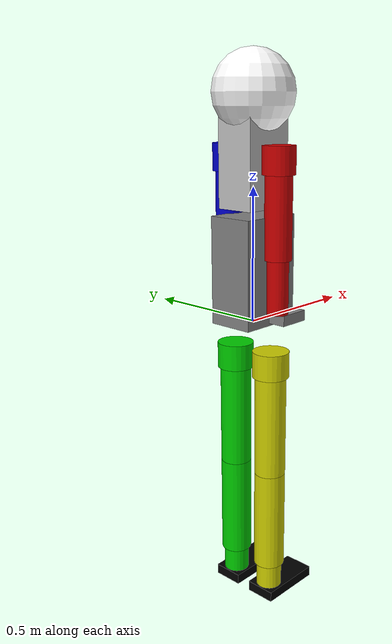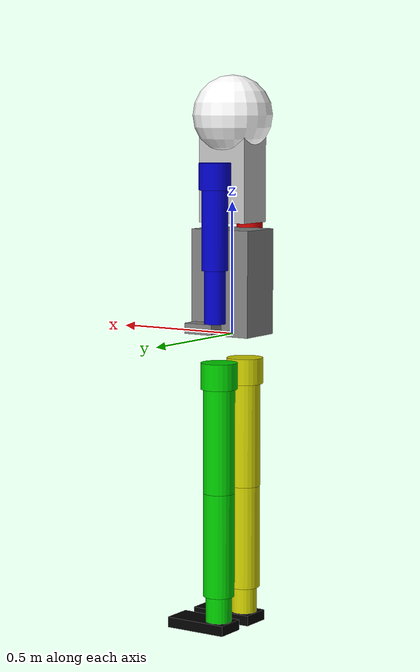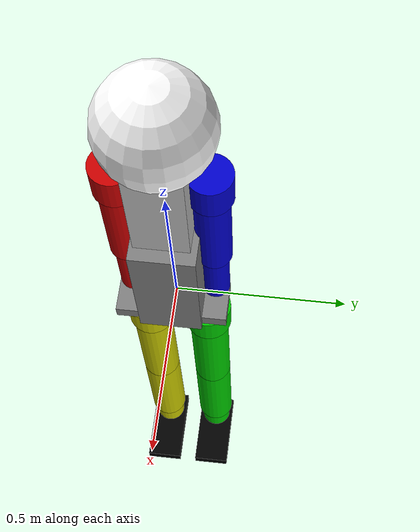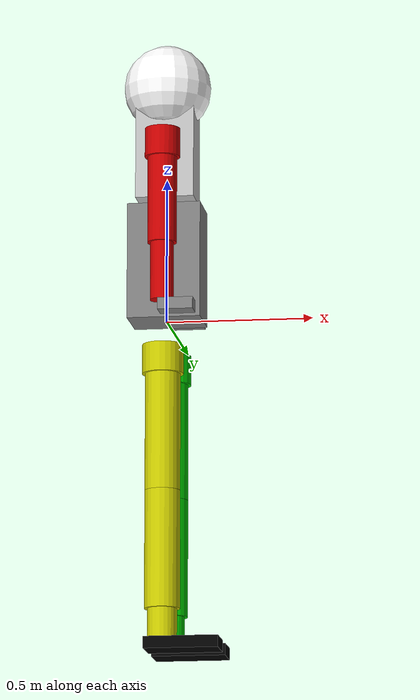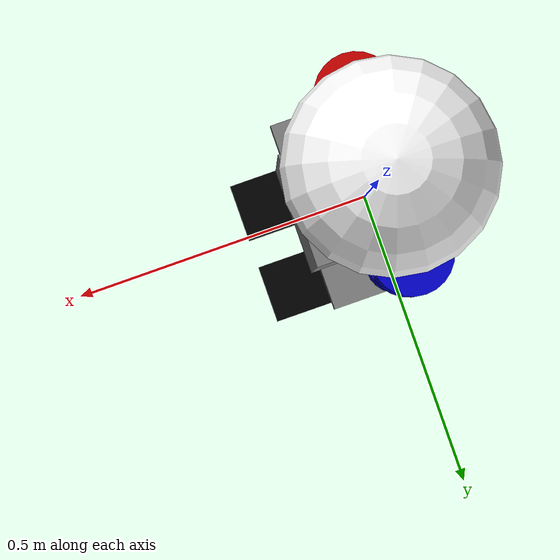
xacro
---
sidebar_position: 5
---

# Module 3 Project: Complete Humanoid Digital Twin with Isaac Sim, ROS, and RL

## Project Overview

Welcome to the Module 3 Capstone Project! In this comprehensive project, you'll integrate all the concepts from this module to create a complete digital twin system for a humanoid robot. This project combines Isaac Sim physics simulation, Isaac ROS communication, vSLAM navigation capabilities, and reinforcement learning for dynamic behaviors.

### Project Goals

1. **Build a complete humanoid robot model** with accurate physics properties
2. **Implement vSLAM system** for navigation in indoor environments
3. **Train locomotion skills** using reinforcement learning
4. **Integrate with ROS2 ecosystem** for real-world transfer potential
5. **Create a cohesive digital twin system** with real-time synchronization

### Prerequisites

Before starting this project, ensure you have:
- Completed all previous chapters in Module 3
- Working Isaac Sim installation with ROS2 bridge
- Basic familiarity with reinforcement learning concepts
- Python and C++ development environment set up

## Phase 1: Complete Robot Model Development

### 1.1 Creating the Humanoid URDF with Sensors

First, let's create a complete humanoid robot model with all necessary sensors:

```xml
<!-- Create: complete_humanoid.urdf.xacro -->
<?xml version="1.0"?>
<robot xmlns:xacro="http://www.ros.org/wiki/xacro" name="complete_humanoid">

  <!-- Constants -->
  <xacro:property name="M_PI" value="3.1415926535897931"/>
  <xacro:property name="humanoid_mass" value="60.0"/>
  <xacro:property name="link_mass" value="1.0"/>
  <xacro:property name="head_mass" value="3.0"/>
  <xacro:property name="arm_mass" value="2.0"/>
  <xacro:property name="leg_mass" value="5.0"/>

  <!-- Materials -->
  <material name="black">
    <color rgba="0.0 0.0 0.0 1.0"/>
  </material>
  <material name="blue">
    <color rgba="0.0 0.0 0.8 1.0"/>
  </material>
  <material name="green">
    <color rgba="0.0 0.8 0.0 1.0"/>
  </material>
  <material name="grey">
    <color rgba="0.5 0.5 0.5 1.0"/>
  </material>
  <material name="silver">
    <color rgba="0.75 0.75 0.75 1.0"/>
  </material>
  <material name="red">
    <color rgba="0.8 0.0 0.0 1.0"/>
  </material>
  <material name="white">
    <color rgba="1.0 1.0 1.0 1.0"/>
  </material>
  <material name="yellow">
    <color rgba="0.8 0.8 0.0 1.0"/>
  </material>

  <!-- Base plate for fixing to world -->
  <link name="base_link">
    <inertial>
      <mass value="0.001"/>
      <origin xyz="0 0 0" rpy="0 0 0"/>
      <inertia ixx="0.0001" ixy="0" ixz="0" iyy="0.0001" iyz="0" izz="0.0001"/>
    </inertial>
  </link>

  <!-- Torso/Pelvis -->
  <link name="pelvis">
    <inertial>
      <mass value="8.0"/>
      <origin xyz="0 0 0.1" rpy="0 0 0"/>
      <inertia ixx="0.1" ixy="0" ixz="0" iyy="0.1" iyz="0" izz="0.05"/>
    </inertial>

    <visual>
      <origin xyz="0 0 0.2" rpy="0 0 0"/>
      <geometry>
        <box size="0.25 0.18 0.4"/>
      </geometry>
      <material name="grey"/>
    </visual>

    <collision>
      <origin xyz="0 0 0.2" rpy="0 0 0"/>
      <geometry>
        <box size="0.25 0.18 0.4"/>
      </geometry>
    </collision>
  </link>

  <joint name="base_to_pelvis" type="fixed">
    <parent link="base_link"/>
    <child link="pelvis"/>
    <origin xyz="0 0 0" rpy="0 0 0"/>
  </joint>

  <!-- Spine -->
  <link name="torso">
    <inertial>
      <mass value="5.0"/>
      <origin xyz="0 0 0.2" rpy="0 0 0"/>
      <inertia ixx="0.08" ixy="0" ixz="0" iyy="0.08" iyz="0" izz="0.03"/>
    </inertial>

    <visual>
      <origin xyz="0 0 0.2" rpy="0 0 0"/>
      <geometry>
        <box size="0.2 0.15 0.35"/>
      </geometry>
      <material name="silver"/>
    </visual>

    <collision>
      <origin xyz="0 0 0.2" rpy="0 0 0"/>
      <geometry>
        <box size="0.2 0.15 0.35"/>
      </geometry>
    </collision>
  </link>

  <joint name="torso_joint" type="fixed">
    <parent link="pelvis"/>
    <child link="torso"/>
    <origin xyz="0 0 0.4" rpy="0 0 0"/>
  </joint>

  <!-- Head -->
  <link name="head">
    <inertial>
      <mass value="${head_mass}"/>
      <origin xyz="0 0 0.075" rpy="0 0 0"/>
      <inertia ixx="0.01" ixy="0" ixz="0" iyy="0.01" iyz="0" izz="0.01"/>
    </inertial>

    <visual>
      <origin xyz="0 0 0.075" rpy="0 0 0"/>
      <geometry>
        <sphere radius="0.15"/>
      </geometry>
      <material name="white"/>
    </visual>

    <collision>
      <origin xyz="0 0 0.075" rpy="0 0 0"/>
      <geometry>
        <sphere radius="0.15"/>
      </geometry>
    </collision>
  </link>

  <joint name="neck_joint" type="revolute">
    <parent link="torso"/>
    <child link="head"/>
    <origin xyz="0 0 0.35" rpy="0 0 0"/>
    <axis xyz="0 1 0"/>
    <limit lower="${-M_PI/3}" upper="${M_PI/3}" effort="5" velocity="${M_PI}"/>
    <dynamics damping="0.5" friction="0.1"/>
  </joint>

  <!-- Left Arm -->
  <link name="left_shoulder">
    <inertial>
      <mass value="1.0"/>
      <origin xyz="0 0 -0.05" rpy="0 0 0"/>
      <inertia ixx="0.003" ixy="0" ixz="0" iyy="0.003" iyz="0" izz="0.001"/>
    </inertial>

    <visual>
      <origin xyz="0 0 -0.05" rpy="0 0 0"/>
      <geometry>
        <cylinder radius="0.06" length="0.1"/>
      </geometry>
      <material name="blue"/>
    </visual>

    <collision>
      <origin xyz="0 0 -0.05" rpy="0 0 0"/>
      <geometry>
        <cylinder radius="0.06" length="0.1"/>
      </geometry>
    </collision>
  </link>

  <joint name="left_shoulder_yaw_joint" type="revolute">
    <parent link="torso"/>
    <child link="left_shoulder"/>
    <origin xyz="0 0.12 0.25" rpy="0 0 0"/>
    <axis xyz="0 0 1"/>
    <limit lower="${-M_PI/2}" upper="${M_PI/2}" effort="20" velocity="${M_PI}"/>
    <dynamics damping="0.5" friction="0.1"/>
  </joint>

  <link name="left_upper_arm">
    <inertial>
      <mass value="${arm_mass}"/>
      <origin xyz="0 0 -0.15" rpy="0 0 0"/>
      <inertia ixx="0.04" ixy="0" ixz="0" iyy="0.04" iyz="0" izz="0.01"/>
    </inertial>

    <visual>
      <origin xyz="0 0 -0.15" rpy="0 0 0"/>
      <geometry>
        <cylinder radius="0.05" length="0.3"/>
      </geometry>
      <material name="blue"/>
    </visual>

    <collision>
      <origin xyz="0 0 -0.15" rpy="0 0 0"/>
      <geometry>
        <cylinder radius="0.05" length="0.3"/>
      </geometry>
    </collision>
  </link>

  <joint name="left_shoulder_pitch_joint" type="revolute">
    <parent link="left_shoulder"/>
    <child link="left_upper_arm"/>
    <origin xyz="0 0 -0.1" rpy="0 0 0"/>
    <axis xyz="1 0 0"/>
    <limit lower="${-M_PI/2}" upper="${M_PI}" effort="20" velocity="${M_PI}"/>
    <dynamics damping="0.5" friction="0.1"/>
  </joint>

  <link name="left_forearm">
    <inertial>
      <mass value="1.0"/>
      <origin xyz="0 0 -0.1" rpy="0 0 0"/>
      <inertia ixx="0.02" ixy="0" ixz="0" iyy="0.02" iyz="0" izz="0.005"/>
    </inertial>

    <visual>
      <origin xyz="0 0 -0.1" rpy="0 0 0"/>
      <geometry>
        <cylinder radius="0.04" length="0.2"/>
      </geometry>
      <material name="blue"/>
    </visual>

    <collision>
      <origin xyz="0 0 -0.1" rpy="0 0 0"/>
      <geometry>
        <cylinder radius="0.04" length="0.2"/>
      </geometry>
    </collision>
  </link>

  <joint name="left_elbow_joint" type="revolute">
    <parent link="left_upper_arm"/>
    <child link="left_forearm"/>
    <origin xyz="0 0 -0.3" rpy="0 0 0"/>
    <axis xyz="1 0 0"/>
    <limit lower="${-M_PI/2}" upper="${M_PI/2}" effort="10" velocity="${M_PI}"/>
    <dynamics damping="0.3" friction="0.1"/>
  </joint>

  <link name="left_hand">
    <inertial>
      <mass value="0.5"/>
      <origin xyz="0.05 0 -0.02" rpy="0 0 0"/>
      <inertia ixx="0.001" ixy="0" ixz="0" iyy="0.001" iyz="0" izz="0.001"/>
    </inertial>

    <visual>
      <origin xyz="0.05 0 -0.02" rpy="0 0 0"/>
      <geometry>
        <box size="0.12 0.08 0.04"/>
      </geometry>
      <material name="grey"/>
    </visual>

    <collision>
      <origin xyz="0.05 0 -0.02" rpy="0 0 0"/>
      <geometry>
        <box size="0.12 0.08 0.04"/>
      </geometry>
    </collision>
  </link>

  <joint name="left_wrist_joint" type="revolute">
    <parent link="left_forearm"/>
    <child link="left_hand"/>
    <origin xyz="0 0 -0.2" rpy="0 0 0"/>
    <axis xyz="0 1 0"/>
    <limit lower="${-M_PI/4}" upper="${M_PI/4}" effort="5" velocity="${M_PI}"/>
    <dynamics damping="0.2" friction="0.05"/>
  </joint>

  <!-- Right Arm (mirror left arm) -->
  <link name="right_shoulder">
    <inertial>
      <mass value="1.0"/>
      <origin xyz="0 0 -0.05" rpy="0 0 0"/>
      <inertia ixx="0.003" ixy="0" ixz="0" iyy="0.003" iyz="0" izz="0.001"/>
    </inertial>

    <visual>
      <origin xyz="0 0 -0.05" rpy="0 0 0"/>
      <geometry>
        <cylinder radius="0.06" length="0.1"/>
      </geometry>
      <material name="red"/>
    </visual>

    <collision>
      <origin xyz="0 0 -0.05" rpy="0 0 0"/>
      <geometry>
        <cylinder radius="0.06" length="0.1"/>
      </geometry>
    </collision>
  </link>

  <joint name="right_shoulder_yaw_joint" type="revolute">
    <parent link="torso"/>
    <child link="right_shoulder"/>
    <origin xyz="0 -0.12 0.25" rpy="0 0 0"/>
    <axis xyz="0 0 1"/>
    <limit lower="${-M_PI/2}" upper="${M_PI/2}" effort="20" velocity="${M_PI}"/>
    <dynamics damping="0.5" friction="0.1"/>
  </joint>

  <link name="right_upper_arm">
    <inertial>
      <mass value="${arm_mass}"/>
      <origin xyz="0 0 -0.15" rpy="0 0 0"/>
      <inertia ixx="0.04" ixy="0" ixz="0" iyy="0.04" iyz="0" izz="0.01"/>
    </inertial>

    <visual>
      <origin xyz="0 0 -0.15" rpy="0 0 0"/>
      <geometry>
        <cylinder radius="0.05" length="0.3"/>
      </geometry>
      <material name="red"/>
    </visual>

    <collision>
      <origin xyz="0 0 -0.15" rpy="0 0 0"/>
      <geometry>
        <cylinder radius="0.05" length="0.3"/>
      </geometry>
    </collision>
  </link>

  <joint name="right_shoulder_pitch_joint" type="revolute">
    <parent link="right_shoulder"/>
    <child link="right_upper_arm"/>
    <origin xyz="0 0 -0.1" rpy="0 0 0"/>
    <axis xyz="1 0 0"/>
    <limit lower="${-M_PI}" upper="${M_PI/2}" effort="20" velocity="${M_PI}"/>
    <dynamics damping="0.5" friction="0.1"/>
  </joint>

  <link name="right_forearm">
    <inertial>
      <mass value="1.0"/>
      <origin xyz="0 0 -0.1" rpy="0 0 0"/>
      <inertia ixx="0.02" ixy="0" ixz="0" iyy="0.02" iyz="0" izz="0.005"/>
    </inertial>

    <visual>
      <origin xyz="0 0 -0.1" rpy="0 0 0"/>
      <geometry>
        <cylinder radius="0.04" length="0.2"/>
      </geometry>
      <material name="red"/>
    </visual>

    <collision>
      <origin xyz="0 0 -0.1" rpy="0 0 0"/>
      <geometry>
        <cylinder radius="0.04" length="0.2"/>
      </geometry>
    </collision>
  </link>

  <joint name="right_elbow_joint" type="revolute">
    <parent link="right_upper_arm"/>
    <child link="right_forearm"/>
    <origin xyz="0 0 -0.3" rpy="0 0 0"/>
    <axis xyz="1 0 0"/>
    <limit lower="${-M_PI/2}" upper="${M_PI/2}" effort="10" velocity="${M_PI}"/>
    <dynamics damping="0.3" friction="0.1"/>
  </joint>

  <link name="right_hand">
    <inertial>
      <mass value="0.5"/>
      <origin xyz="0.05 0 -0.02" rpy="0 0 0"/>
      <inertia ixx="0.001" ixy="0" ixz="0" iyy="0.001" iyz="0" izz="0.001"/>
    </inertial>

    <visual>
      <origin xyz="0.05 0 -0.02" rpy="0 0 0"/>
      <geometry>
        <box size="0.12 0.08 0.04"/>
      </geometry>
      <material name="grey"/>
    </visual>

    <collision>
      <origin xyz="0.05 0 -0.02" rpy="0 0 0"/>
      <geometry>
        <box size="0.12 0.08 0.04"/>
      </geometry>
    </collision>
  </link>

  <joint name="right_wrist_joint" type="revolute">
    <parent link="right_forearm"/>
    <child link="right_hand"/>
    <origin xyz="0 0 -0.2" rpy="0 0 0"/>
    <axis xyz="0 1 0"/>
    <limit lower="${-M_PI/4}" upper="${M_PI/4}" effort="5" velocity="${M_PI}"/>
    <dynamics damping="0.2" friction="0.05"/>
  </joint>

  <!-- Left Leg -->
  <link name="left_hip">
    <inertial>
      <mass value="2.0"/>
      <origin xyz="0 0 -0.05" rpy="0 0 0"/>
      <inertia ixx="0.008" ixy="0" ixz="0" iyy="0.008" iyz="0" izz="0.003"/>
    </inertial>

    <visual>
      <origin xyz="0 0 -0.05" rpy="0 0 0"/>
      <geometry>
        <cylinder radius="0.07" length="0.1"/>
      </geometry>
      <material name="green"/>
    </visual>

    <collision>
      <origin xyz="0 0 -0.05" rpy="0 0 0"/>
      <geometry>
        <cylinder radius="0.07" length="0.1"/>
      </geometry>
    </collision>
  </link>

  <joint name="left_hip_yaw_joint" type="revolute">
    <parent link="pelvis"/>
    <child link="left_hip"/>
    <origin xyz="0 0.09 -0.1" rpy="0 0 0"/>
    <axis xyz="0 0 1"/>
    <limit lower="${-M_PI/6}" upper="${M_PI/6}" effort="30" velocity="${M_PI}"/>
    <dynamics damping="1.0" friction="0.2"/>
  </joint>

  <link name="left_thigh">
    <inertial>
      <mass value="${leg_mass}"/>
      <origin xyz="0 0 -0.2" rpy="0 0 0"/>
      <inertia ixx="0.15" ixy="0" ixz="0" iyy="0.15" iyz="0" izz="0.02"/>
    </inertial>

    <visual>
      <origin xyz="0 0 -0.2" rpy="0 0 0"/>
      <geometry>
        <cylinder radius="0.06" length="0.4"/>
      </geometry>
      <material name="green"/>
    </visual>

    <collision>
      <origin xyz="0 0 -0.2" rpy="0 0 0"/>
      <geometry>
        <cylinder radius="0.06" length="0.4"/>
      </geometry>
    </collision>
  </link>

  <joint name="left_hip_pitch_joint" type="revolute">
    <parent link="left_hip"/>
    <child link="left_thigh"/>
    <origin xyz="0 0 -0.1" rpy="0 0 0"/>
    <axis xyz="1 0 0"/>
    <limit lower="${-M_PI/2}" upper="${M_PI/2}" effort="40" velocity="${M_PI}"/>
    <dynamics damping="1.0" friction="0.2"/>
  </joint>

  <link name="left_shin">
    <inertial>
      <mass value="${leg_mass}"/>
      <origin xyz="0 0 -0.2" rpy="0 0 0"/>
      <inertia ixx="0.12" ixy="0" ixz="0" iyy="0.12" iyz="0" izz="0.015"/>
    </inertial>

    <visual>
      <origin xyz="0 0 -0.2" rpy="0 0 0"/>
      <geometry>
        <cylinder radius="0.06" length="0.4"/>
      </geometry>
      <material name="green"/>
    </visual>

    <collision>
      <origin xyz="0 0 -0.2" rpy="0 0 0"/>
      <geometry>
        <cylinder radius="0.06" length="0.4"/>
      </geometry>
    </collision>
  </link>

  <joint name="left_knee_joint" type="revolute">
    <parent link="left_thigh"/>
    <child link="left_shin"/>
    <origin xyz="0 0 -0.4" rpy="0 0 0"/>
    <axis xyz="1 0 0"/>
    <limit lower="${-M_PI/2}" upper="0" effort="40" velocity="${M_PI}"/>
    <dynamics damping="1.0" friction="0.2"/>
  </joint>

  <link name="left_ankle">
    <inertial>
      <mass value="1.0"/>
      <origin xyz="0 0 -0.05" rpy="0 0 0"/>
      <inertia ixx="0.005" ixy="0" ixz="0" iyy="0.005" iyz="0" izz="0.002"/>
    </inertial>

    <visual>
      <origin xyz="0 0 -0.05" rpy="0 0 0"/>
      <geometry>
        <cylinder radius="0.05" length="0.1"/>
      </geometry>
      <material name="green"/>
    </visual>

    <collision>
      <origin xyz="0 0 -0.05" rpy="0 0 0"/>
      <geometry>
        <cylinder radius="0.05" length="0.1"/>
      </geometry>
    </collision>
  </link>

  <joint name="left_ankle_pitch_joint" type="revolute">
    <parent link="left_shin"/>
    <child link="left_ankle"/>
    <origin xyz="0 0 -0.4" rpy="0 0 0"/>
    <axis xyz="1 0 0"/>
    <limit lower="${-M_PI/4}" upper="${M_PI/4}" effort="20" velocity="${M_PI}"/>
    <dynamics damping="0.5" friction="0.1"/>
  </joint>

  <link name="left_foot">
    <inertial>
      <mass value="1.0"/>
      <origin xyz="0.07 0 -0.02" rpy="0 0 0"/>
      <inertia ixx="0.01" ixy="0" ixz="0" iyy="0.02" iyz="0" izz="0.02"/>
    </inertial>

    <visual>
      <origin xyz="0.07 0 -0.02" rpy="0 0 0"/>
      <geometry>
        <box size="0.25 0.12 0.04"/>
      </geometry>
      <material name="black"/>
    </visual>

    <collision>
      <origin xyz="0.07 0 -0.02" rpy="0 0 0"/>
      <geometry>
        <box size="0.25 0.12 0.04"/>
      </geometry>
    </collision>
  </link>

  <joint name="left_ankle_roll_joint" type="revolute">
    <parent link="left_ankle"/>
    <child link="left_foot"/>
    <origin xyz="0 0 -0.1" rpy="0 0 0"/>
    <axis xyz="0 1 0"/>
    <limit lower="${-M_PI/6}" upper="${M_PI/6}" effort="15" velocity="${M_PI}"/>
    <dynamics damping="0.3" friction="0.05"/>
  </joint>

  <!-- Right Leg (mirror left leg) -->
  <link name="right_hip">
    <inertial>
      <mass value="2.0"/>
      <origin xyz="0 0 -0.05" rpy="0 0 0"/>
      <inertia ixx="0.008" ixy="0" ixz="0" iyy="0.008" iyz="0" izz="0.003"/>
    </inertial>

    <visual>
      <origin xyz="0 0 -0.05" rpy="0 0 0"/>
      <geometry>
        <cylinder radius="0.07" length="0.1"/>
      </geometry>
      <material name="yellow"/>
    </visual>

    <collision>
      <origin xyz="0 0 -0.05" rpy="0 0 0"/>
      <geometry>
        <cylinder radius="0.07" length="0.1"/>
      </geometry>
    </collision>
  </link>

  <joint name="right_hip_yaw_joint" type="revolute">
    <parent link="pelvis"/>
    <child link="right_hip"/>
    <origin xyz="0 -0.09 -0.1" rpy="0 0 0"/>
    <axis xyz="0 0 1"/>
    <limit lower="${-M_PI/6}" upper="${M_PI/6}" effort="30" velocity="${M_PI}"/>
    <dynamics damping="1.0" friction="0.2"/>
  </joint>

  <link name="right_thigh">
    <inertial>
      <mass value="${leg_mass}"/>
      <origin xyz="0 0 -0.2" rpy="0 0 0"/>
      <inertia ixx="0.15" ixy="0" ixz="0" iyy="0.15" iyz="0" izz="0.02"/>
    </inertial>

    <visual>
      <origin xyz="0 0 -0.2" rpy="0 0 0"/>
      <geometry>
        <cylinder radius="0.06" length="0.4"/>
      </geometry>
      <material name="yellow"/>
    </visual>

    <collision>
      <origin xyz="0 0 -0.2" rpy="0 0 0"/>
      <geometry>
        <cylinder radius="0.06" length="0.4"/>
      </geometry>
    </collision>
  </link>

  <joint name="right_hip_pitch_joint" type="revolute">
    <parent link="right_hip"/>
    <child link="right_thigh"/>
    <origin xyz="0 0 -0.1" rpy="0 0 0"/>
    <axis xyz="1 0 0"/>
    <limit lower="${-M_PI/2}" upper="${M_PI/2}" effort="40" velocity="${M_PI}"/>
    <dynamics damping="1.0" friction="0.2"/>
  </joint>

  <link name="right_shin">
    <inertial>
      <mass value="${leg_mass}"/>
      <origin xyz="0 0 -0.2" rpy="0 0 0"/>
      <inertia ixx="0.12" ixy="0" ixz="0" iyy="0.12" iyz="0" izz="0.015"/>
    </inertial>

    <visual>
      <origin xyz="0 0 -0.2" rpy="0 0 0"/>
      <geometry>
        <cylinder radius="0.06" length="0.4"/>
      </geometry>
      <material name="yellow"/>
    </visual>

    <collision>
      <origin xyz="0 0 -0.2" rpy="0 0 0"/>
      <geometry>
        <cylinder radius="0.06" length="0.4"/>
      </geometry>
    </collision>
  </link>

  <joint name="right_knee_joint" type="revolute">
    <parent link="right_thigh"/>
    <child link="right_shin"/>
    <origin xyz="0 0 -0.4" rpy="0 0 0"/>
    <axis xyz="1 0 0"/>
    <limit lower="${-M_PI/2}" upper="0" effort="40" velocity="${M_PI}"/>
    <dynamics damping="1.0" friction="0.2"/>
  </joint>

  <link name="right_ankle">
    <inertial>
      <mass value="1.0"/>
      <origin xyz="0 0 -0.05" rpy="0 0 0"/>
      <inertia ixx="0.005" ixy="0" ixz="0" iyy="0.005" iyz="0" izz="0.002"/>
    </inertial>

    <visual>
      <origin xyz="0 0 -0.05" rpy="0 0 0"/>
      <geometry>
        <cylinder radius="0.05" length="0.1"/>
      </geometry>
      <material name="yellow"/>
    </visual>

    <collision>
      <origin xyz="0 0 -0.05" rpy="0 0 0"/>
      <geometry>
        <cylinder radius="0.05" length="0.1"/>
      </geometry>
    </collision>
  </link>

  <joint name="right_ankle_pitch_joint" type="revolute">
    <parent link="right_shin"/>
    <child link="right_ankle"/>
    <origin xyz="0 0 -0.4" rpy="0 0 0"/>
    <axis xyz="1 0 0"/>
    <limit lower="${-M_PI/4}" upper="${M_PI/4}" effort="20" velocity="${M_PI}"/>
    <dynamics damping="0.5" friction="0.1"/>
  </joint>

  <link name="right_foot">
    <inertial>
      <mass value="1.0"/>
      <origin xyz="0.07 0 -0.02" rpy="0 0 0"/>
      <inertia ixx="0.01" ixy="0" ixz="0" iyy="0.02" iyz="0" izz="0.02"/>
    </inertial>

    <visual>
      <origin xyz="0.07 0 -0.02" rpy="0 0 0"/>
      <geometry>
        <box size="0.25 0.12 0.04"/>
      </geometry>
      <material name="black"/>
    </visual>

    <collision>
      <origin xyz="0.07 0 -0.02" rpy="0 0 0"/>
      <geometry>
        <box size="0.25 0.12 0.04"/>
      </geometry>
    </collision>
  </link>

  <joint name="right_ankle_roll_joint" type="revolute">
    <parent link="right_ankle"/>
    <child link="right_foot"/>
    <origin xyz="0 0 -0.1" rpy="0 0 0"/>
    <axis xyz="0 1 0"/>
    <limit lower="${-M_PI/6}" upper="${M_PI/6}" effort="15" velocity="${M_PI}"/>
    <dynamics damping="0.3" friction="0.05"/>
  </joint>

  <!-- Gazebo plugins -->
  <gazebo>
    <plugin name="ros_control" filename="libgazebo_ros_control.so">
      <robotNamespace>/humanoid_robot</robotNamespace>
    </plugin>
  </gazebo>

  <!-- Add IMU sensor to head -->
  <gazebo reference="head">
    <sensor name="imu_sensor" type="imu">
      <always_on>true</always_on>
      <update_rate>100</update_rate>
      <visualize>false</visualize>
      <imu>
        <angular_velocity>
          <x>
            <noise type="gaussian">
              <mean>0.0</mean>
              <stddev>2e-4</stddev>
            </noise>
          </x>
          <y>
            <noise type="gaussian">
              <mean>0.0</mean>
              <stddev>2e-4</stddev>
            </noise>
          </y>
          <z>
            <noise type="gaussian">
              <mean>0.0</mean>
              <stddev>2e-4</stddev>
            </noise>
          </z>
        </angular_velocity>
        <linear_acceleration>
          <x>
            <noise type="gaussian">
              <mean>0.0</mean>
              <stddev>1.7e-2</stddev>
            </noise>
          </x>
          <y>
            <noise type="gaussian">
              <mean>0.0</mean>
              <stddev>1.7e-2</stddev>
            </noise>
          </y>
          <z>
            <noise type="gaussian">
              <mean>0.0</mean>
              <stddev>1.7e-2</stddev>
            </noise>
          </z>
        </linear_acceleration>
      </imu>
      <plugin name="imu_controller" filename="libgazebo_ros_imu.so">
        <topicName>imu/data</topicName>
        <serviceName>imu/service</serviceName>
        <gaussianNoise>0.0</gaussianNoise>
        <updateRate>100.0</updateRate>
      </plugin>
    </sensor>
  </gazebo>

  <!-- Force/Torque sensors in feet -->
  <gazebo reference="left_foot">
    <sensor name="left_foot_ft_sensor" type="force_torque">
      <always_on>true</always_on>
      <update_rate>500</update_rate>
      <force_torque>
        <frame>child</frame>
        <measure_direction>child_to_parent</measure_direction>
      </force_torque>
    </sensor>
  </gazebo>

  <gazebo reference="right_foot">
    <sensor name="right_foot_ft_sensor" type="force_torque">
      <always_on>true</always_on>
      <update_rate>500</update_rate>
      <force_torque>
        <frame>child</frame>
        <measure_direction>child_to_parent</measure_direction>
      </force_torque>
    </sensor>
  </gazebo>

  <!-- ROS2 Control interface -->
  <ros2_control name="GazeboSystem" type="system">
    <hardware>
      <plugin>gazebo_ros2_control/GazeboSystem</plugin>
    </hardware>

    <joint name="left_hip_yaw_joint">
      <command_interface name="position"/>
      <command_interface name="velocity"/>
      <state_interface name="position"/>
      <state_interface name="velocity"/>
    </joint>

    <joint name="left_hip_pitch_joint">
      <command_interface name="position"/>
      <command_interface name="velocity"/>
      <state_interface name="position"/>
      <state_interface name="velocity"/>
    </joint>

    <joint name="left_knee_joint">
      <command_interface name="position"/>
      <command_interface name="velocity"/>
      <state_interface name="position"/>
      <state_interface name="velocity"/>
    </joint>

    <joint name="left_ankle_pitch_joint">
      <command_interface name="position"/>
      <command_interface name="velocity"/>
      <state_interface name="position"/>
      <state_interface name="velocity"/>
    </joint>

    <joint name="left_ankle_roll_joint">
      <command_interface name="position"/>
      <command_interface name="velocity"/>
      <state_interface name="position"/>
      <state_interface name="velocity"/>
    </joint>

    <joint name="right_hip_yaw_joint">
      <command_interface name="position"/>
      <command_interface name="velocity"/>
      <state_interface name="position"/>
      <state_interface name="velocity"/>
    </joint>

    <joint name="right_hip_pitch_joint">
      <command_interface name="position"/>
      <command_interface name="velocity"/>
      <state_interface name="position"/>
      <state_interface name="velocity"/>
    </joint>

    <joint name="right_knee_joint">
      <command_interface name="position"/>
      <command_interface name="velocity"/>
      <state_interface name="position"/>
      <state_interface name="velocity"/>
    </joint>

    <joint name="right_ankle_pitch_joint">
      <command_interface name="position"/>
      <command_interface name="velocity"/>
      <state_interface name="position"/>
      <state_interface name="velocity"/>
    </joint>

    <joint name="right_ankle_roll_joint">
      <command_interface name="position"/>
      <command_interface name="velocity"/>
      <state_interface name="position"/>
      <state_interface name="velocity"/>
    </joint>

    <joint name="left_shoulder_yaw_joint">
      <command_interface name="position"/>
      <command_interface name="velocity"/>
      <state_interface name="position"/>
      <state_interface name="velocity"/>
    </joint>

    <joint name="left_shoulder_pitch_joint">
      <command_interface name="position"/>
      <command_interface name="velocity"/>
      <state_interface name="position"/>
      <state_interface name="velocity"/>
    </joint>

    <joint name="left_elbow_joint">
      <command_interface name="position"/>
      <command_interface name="velocity"/>
      <state_interface name="position"/>
      <state_interface name="velocity"/>
    </joint>

    <joint name="left_wrist_joint">
      <command_interface name="position"/>
      <command_interface name="velocity"/>
      <state_interface name="position"/>
      <state_interface name="velocity"/>
    </joint>

    <joint name="right_shoulder_yaw_joint">
      <command_interface name="position"/>
      <command_interface name="velocity"/>
      <state_interface name="position"/>
      <state_interface name="velocity"/>
    </joint>

    <joint name="right_shoulder_pitch_joint">
      <command_interface name="position"/>
      <command_interface name="velocity"/>
      <state_interface name="position"/>
      <state_interface name="velocity"/>
    </joint>

    <joint name="right_elbow_joint">
      <command_interface name="position"/>
      <command_interface name="velocity"/>
      <state_interface name="position"/>
      <state_interface name="velocity"/>
    </joint>

    <joint name="right_wrist_joint">
      <command_interface name="position"/>
      <command_interface name="velocity"/>
      <state_interface name="position"/>
      <state_interface name="velocity"/>
    </joint>

    <joint name="neck_joint">
      <command_interface name="position"/>
      <command_interface name="velocity"/>
      <state_interface name="position"/>
      <state_interface name="velocity"/>
    </joint>
  </ros2_control>

</robot>
